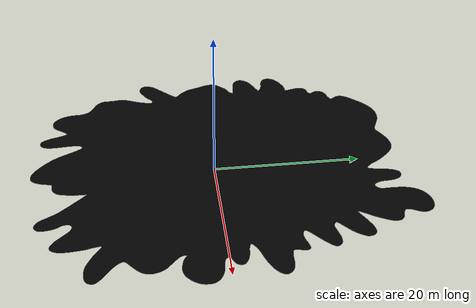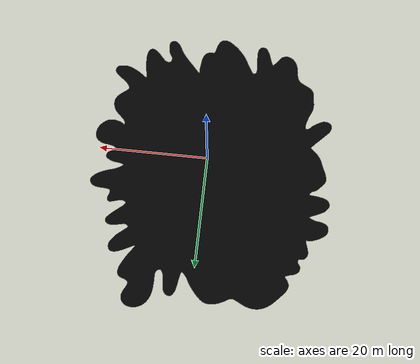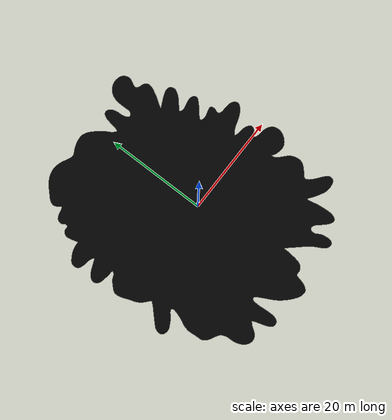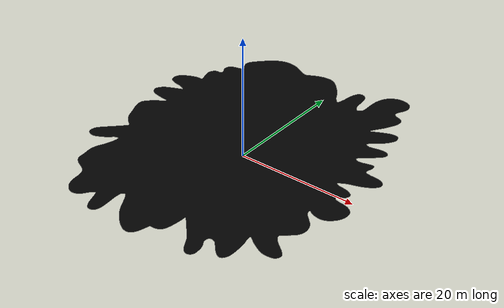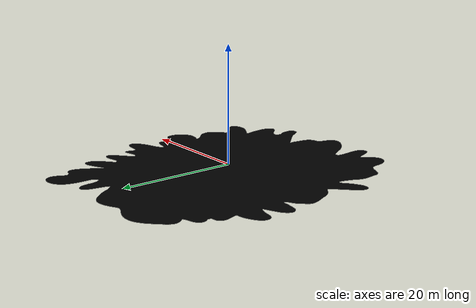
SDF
<?xml version='1.0' ?>
<sdf version="1.6">
  <model name="polluant_shape">
    <static>true</static>

    <link name="base_link">
      <visual name="visual">
        <geometry>
          <mesh>
            <uri>materials/polluant_shape2.dae</uri>
          </mesh>
        </geometry>
        <!--
          Uncomment material if using DYNAMIC_GEOMETRY which uses PBS
          rather than a custom shader
        -->

      <material>
        <double_sided>1</double_sided>          <!-- se for uma superfície fina -->
        <ambient>0 0 0 1</ambient>
        <diffuse>0 0 0 1</diffuse>
        <specular>0 0 0 1</specular>
        <emissive>0.02 0.02 0.02 1</emissive>   <!-- opcional: um “fio” de luz pra não sumir totalmente -->
        <pbr>
          <metal>                                <!-- sem albedo_map -->
            <metalness>0</metalness>
            <roughness>1</roughness>
          </metal>
        </pbr>
      </material>

      </visual>
    </link>
  </model>
</sdf>
